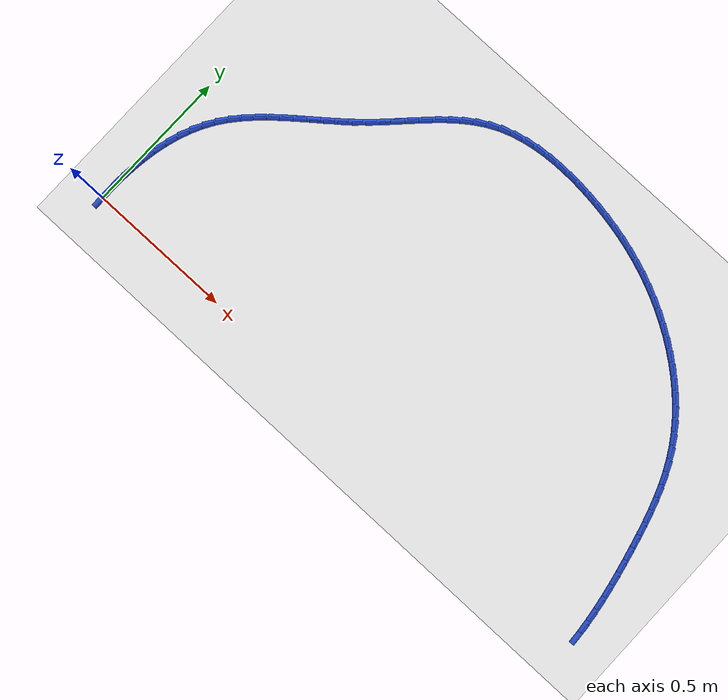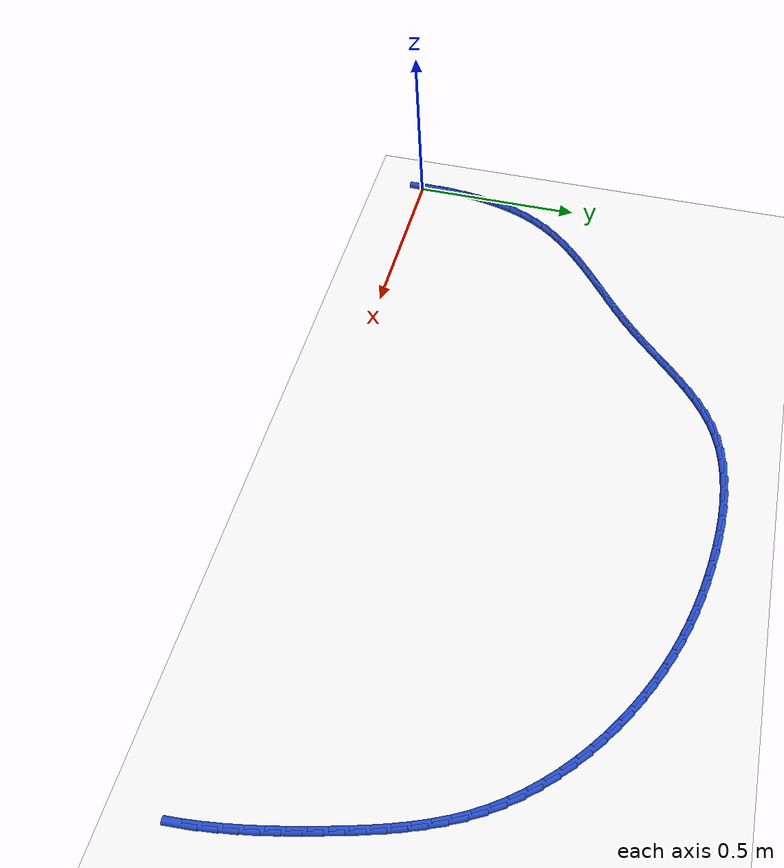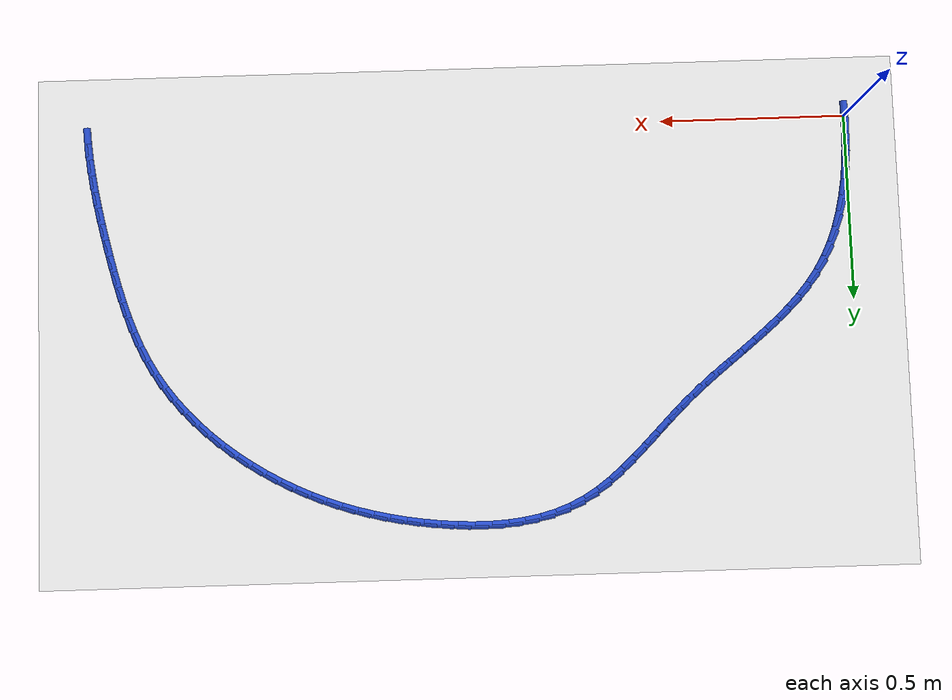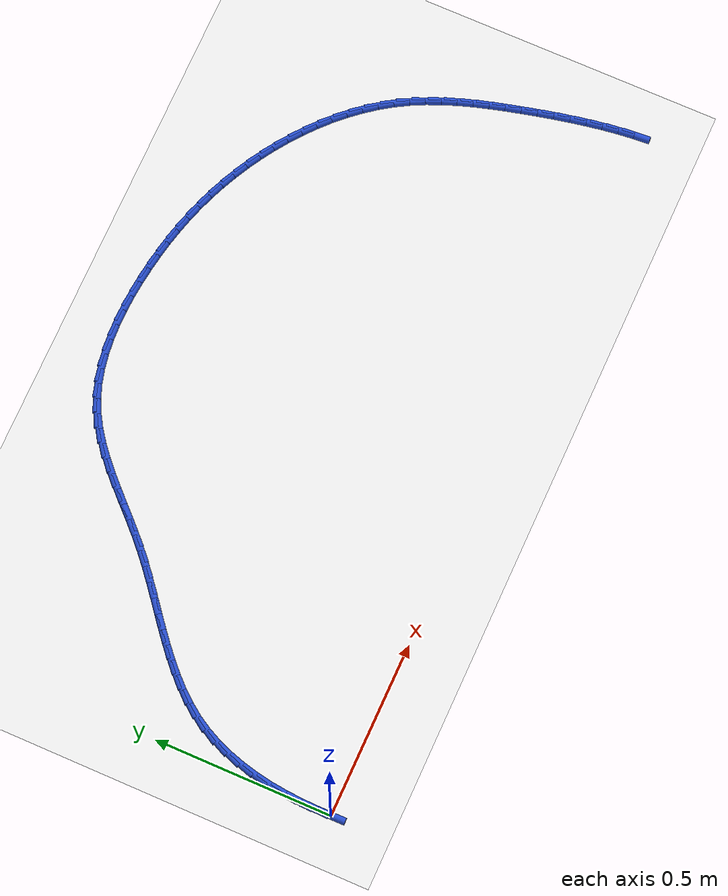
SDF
<sdf version="1.6">
 <world name="default">
  <model name="ground_plane">
   <static>1</static>
   <link name="link">
    <collision name="collision">
     <geometry><plane><normal>0 0 1</normal><size>100 100</size></plane></geometry>
     <surface><friction><ode><mu>100</mu><mu2>50</mu2></ode></friction></surface>
    </collision>
    <visual name="visual">
     <cast_shadows>0</cast_shadows>
     <geometry><plane><normal>0 0 1</normal><size>100 100</size></plane></geometry>
     <material>
      <script><uri>file://media/materials/scripts/gazebo.material</uri><name>Gazebo/WhiteGlow</name></script>
     </material>
    </visual>
   </link>
  </model>
  <model name="line">
   <link name="link_0">
    <pose>3.469446951953614e-18 -2.7755575615628914e-17 0.01 0 1.57 -1.5662328181608505</pose>
    <collision name="collision">
     <geometry><cylinder><radius>0.01</radius><length>0.08</length></cylinder></geometry>
    </collision>
    <visual name="visual">
     <material>
      <script><name>Gazebo/Blue</name><uri>file://media/materials/scripts/gazebo.material</uri></script>
     </material>
     <geometry><cylinder><radius>0.01</radius><length>0.08</length></cylinder></geometry>
    </visual>
   </link>
   <link name="link_1">
    <pose>-0.00020602253707400727 0.04514533079947657 0.01 0 1.57 1.5365275692211684</pose>
    <collision name="collision">
     <geometry><cylinder><radius>0.01</radius><length>0.08</length></cylinder></geometry>
    </collision>
    <visual name="visual">
     <material>
      <script><name>Gazebo/Blue</name><uri>file://media/materials/scripts/gazebo.material</uri></script>
     </material>
     <geometry><cylinder><radius>0.01</radius><length>0.08</length></cylinder></geometry>
    </visual>
   </link>
   <link name="link_2">
    <pose>0.0013460004159330614 0.09041733588694323 0.01 0 1.57 1.4938808284677962</pose>
    <collision name="collision">
     <geometry><cylinder><radius>0.01</radius><length>0.08</length></cylinder></geometry>
    </collision>
    <visual name="visual">
     <material>
      <script><name>Gazebo/Blue</name><uri>file://media/materials/scripts/gazebo.material</uri></script>
     </material>
     <geometry><cylinder><radius>0.01</radius><length>0.08</length></cylinder></geometry>
    </visual>
   </link>
   <link name="link_3">
    <pose>0.00482324214725611 0.13553674598285181 0.01 0 1.57 1.446800699411635</pose>
    <collision name="collision">
     <geometry><cylinder><radius>0.01</radius><length>0.08</length></cylinder></geometry>
    </collision>
    <visual name="visual">
     <material>
      <script><name>Gazebo/Blue</name><uri>file://media/materials/scripts/gazebo.material</uri></script>
     </material>
     <geometry><cylinder><radius>0.01</radius><length>0.08</length></cylinder></geometry>
    </visual>
   </link>
   <link name="link_4">
    <pose>0.010392875945130043 0.18022429180765426 0.01 0 1.57 1.3946104873315452</pose>
    <collision name="collision">
     <geometry><cylinder><radius>0.01</radius><length>0.08</length></cylinder></geometry>
    </collision>
    <visual name="visual">
     <material>
      <script><name>Gazebo/Blue</name><uri>file://media/materials/scripts/gazebo.material</uri></script>
     </material>
     <geometry><cylinder><radius>0.01</radius><length>0.08</length></cylinder></geometry>
    </visual>
   </link>
   <link name="link_5">
    <pose>0.01822207509778976 0.22420070408180257 0.01 0 1.57 1.3365870525976995</pose>
    <collision name="collision">
     <geometry><cylinder><radius>0.01</radius><length>0.08</length></cylinder></geometry>
    </collision>
    <visual name="visual">
     <material>
      <script><name>Gazebo/Blue</name><uri>file://media/materials/scripts/gazebo.material</uri></script>
     </material>
     <geometry><cylinder><radius>0.01</radius><length>0.08</length></cylinder></geometry>
    </visual>
   </link>
   <link name="link_6">
    <pose>0.02847801289347018 0.2671867135257487 0.01 0 1.57 1.2719896750110322</pose>
    <collision name="collision">
     <geometry><cylinder><radius>0.01</radius><length>0.08</length></cylinder></geometry>
    </collision>
    <visual name="visual">
     <material>
      <script><name>Gazebo/Blue</name><uri>file://media/materials/scripts/gazebo.material</uri></script>
     </material>
     <geometry><cylinder><radius>0.01</radius><length>0.08</length></cylinder></geometry>
    </visual>
   </link>
   <link name="link_7">
    <pose>0.041327862620406206 0.3089030508599446 0.01 0 1.57 1.200115232319605</pose>
    <collision name="collision">
     <geometry><cylinder><radius>0.01</radius><length>0.08</length></cylinder></geometry>
    </collision>
    <visual name="visual">
     <material>
      <script><name>Gazebo/Blue</name><uri>file://media/materials/scripts/gazebo.material</uri></script>
     </material>
     <geometry><cylinder><radius>0.01</radius><length>0.08</length></cylinder></geometry>
    </visual>
   </link>
   <link name="link_8">
    <pose>0.056938797566832726 0.34907044680484217 0.01 0 1.57 1.120389181391767</pose>
    <collision name="collision">
     <geometry><cylinder><radius>0.01</radius><length>0.08</length></cylinder></geometry>
    </collision>
    <visual name="visual">
     <material>
      <script><name>Gazebo/Blue</name><uri>file://media/materials/scripts/gazebo.material</uri></script>
     </material>
     <geometry><cylinder><radius>0.01</radius><length>0.08</length></cylinder></geometry>
    </visual>
   </link>
   <link name="link_9">
    <pose>0.07547799102098467 0.38740963208089335 0.01 0 1.57 1.0328212205551348</pose>
    <collision name="collision">
     <geometry><cylinder><radius>0.01</radius><length>0.08</length></cylinder></geometry>
    </collision>
    <visual name="visual">
     <material>
      <script><name>Gazebo/Blue</name><uri>file://media/materials/scripts/gazebo.material</uri></script>
     </material>
     <geometry><cylinder><radius>0.01</radius><length>0.08</length></cylinder></geometry>
    </visual>
   </link>
   <link name="link_10">
    <pose>0.09710295406298641 0.42365174749847884 0.01 0 1.57 0.9461803319421407</pose>
    <collision name="collision">
     <geometry><cylinder><radius>0.01</radius><length>0.08</length></cylinder></geometry>
    </collision>
    <visual name="visual">
     <material>
      <script><name>Gazebo/Blue</name><uri>file://media/materials/scripts/gazebo.material</uri></script>
     </material>
     <geometry><cylinder><radius>0.01</radius><length>0.08</length></cylinder></geometry>
    </visual>
   </link>
   <link name="link_11">
    <pose>0.1217196770446741 0.45779892300115727 0.01 0 1.57 0.8707524983348643</pose>
    <collision name="collision">
     <geometry><cylinder><radius>0.01</radius><length>0.08</length></cylinder></geometry>
    </collision>
    <visual name="visual">
     <material>
      <script><name>Gazebo/Blue</name><uri>file://media/materials/scripts/gazebo.material</uri></script>
     </material>
     <geometry><cylinder><radius>0.01</radius><length>0.08</length></cylinder></geometry>
    </visual>
   </link>
   <link name="link_12">
    <pose>0.14896519378176706 0.49014306305357924 0.01 0 1.57 0.8077489555728229</pose>
    <collision name="collision">
     <geometry><cylinder><radius>0.01</radius><length>0.08</length></cylinder></geometry>
    </collision>
    <visual name="visual">
     <material>
      <script><name>Gazebo/Blue</name><uri>file://media/materials/scripts/gazebo.material</uri></script>
     </material>
     <geometry><cylinder><radius>0.01</radius><length>0.08</length></cylinder></geometry>
    </visual>
   </link>
   <link name="link_13">
    <pose>0.1784633838088167 0.520990244579563 0.01 0 1.57 0.7572487342943846</pose>
    <collision name="collision">
     <geometry><cylinder><radius>0.01</radius><length>0.08</length></cylinder></geometry>
    </collision>
    <visual name="visual">
     <material>
      <script><name>Gazebo/Blue</name><uri>file://media/materials/scripts/gazebo.material</uri></script>
     </material>
     <geometry><cylinder><radius>0.01</radius><length>0.08</length></cylinder></geometry>
    </visual>
   </link>
   <link name="link_14">
    <pose>0.20983812666037432 0.5506465445029266 0.01 0 1.57 0.7189284821755045</pose>
    <collision name="collision">
     <geometry><cylinder><radius>0.01</radius><length>0.08</length></cylinder></geometry>
    </collision>
    <visual name="visual">
     <material>
      <script><name>Gazebo/Blue</name><uri>file://media/materials/scripts/gazebo.material</uri></script>
     </material>
     <geometry><cylinder><radius>0.01</radius><length>0.08</length></cylinder></geometry>
    </visual>
   </link>
   <link name="link_15">
    <pose>0.24271330187099135 0.5794180397474883 0.01 0 1.57 0.6923008136913837</pose>
    <collision name="collision">
     <geometry><cylinder><radius>0.01</radius><length>0.08</length></cylinder></geometry>
    </collision>
    <visual name="visual">
     <material>
      <script><name>Gazebo/Blue</name><uri>file://media/materials/scripts/gazebo.material</uri></script>
     </material>
     <geometry><cylinder><radius>0.01</radius><length>0.08</length></cylinder></geometry>
    </visual>
   </link>
   <link name="link_16">
    <pose>0.2767127889752188 0.6076108072370656 0.01 0 1.57 0.6768776904252869</pose>
    <collision name="collision">
     <geometry><cylinder><radius>0.01</radius><length>0.08</length></cylinder></geometry>
    </collision>
    <visual name="visual">
     <material>
      <script><name>Gazebo/Blue</name><uri>file://media/materials/scripts/gazebo.material</uri></script>
     </material>
     <geometry><cylinder><radius>0.01</radius><length>0.08</length></cylinder></geometry>
    </visual>
   </link>
   <link name="link_17">
    <pose>0.3114604675076083 0.6355309238954772 0.01 0 1.57 0.6722661655963784</pose>
    <collision name="collision">
     <geometry><cylinder><radius>0.01</radius><length>0.08</length></cylinder></geometry>
    </collision>
    <visual name="visual">
     <material>
      <script><name>Gazebo/Blue</name><uri>file://media/materials/scripts/gazebo.material</uri></script>
     </material>
     <geometry><cylinder><radius>0.01</radius><length>0.08</length></cylinder></geometry>
    </visual>
   </link>
   <link name="link_18">
    <pose>0.34658021700271086 0.6634844666465405 0.01 0 1.57 0.6782125351929353</pose>
    <collision name="collision">
     <geometry><cylinder><radius>0.01</radius><length>0.08</length></cylinder></geometry>
    </collision>
    <visual name="visual">
     <material>
      <script><name>Gazebo/Blue</name><uri>file://media/materials/scripts/gazebo.material</uri></script>
     </material>
     <geometry><cylinder><radius>0.01</radius><length>0.08</length></cylinder></geometry>
    </visual>
   </link>
   <link name="link_19">
    <pose>0.3816959169950781 0.6917775124140739 0.01 0 1.57 0.6946082987009818</pose>
    <collision name="collision">
     <geometry><cylinder><radius>0.01</radius><length>0.08</length></cylinder></geometry>
    </collision>
    <visual name="visual">
     <material>
      <script><name>Gazebo/Blue</name><uri>file://media/materials/scripts/gazebo.material</uri></script>
     </material>
     <geometry><cylinder><radius>0.01</radius><length>0.08</length></cylinder></geometry>
    </visual>
   </link>
   <link name="link_20">
    <pose>0.41643144701926105 0.7207161381218956 0.01 0 1.57 0.7214649411585046</pose>
    <collision name="collision">
     <geometry><cylinder><radius>0.01</radius><length>0.08</length></cylinder></geometry>
    </collision>
    <visual name="visual">
     <material>
      <script><name>Gazebo/Blue</name><uri>file://media/materials/scripts/gazebo.material</uri></script>
     </material>
     <geometry><cylinder><radius>0.01</radius><length>0.08</length></cylinder></geometry>
    </visual>
   </link>
   <link name="link_21">
    <pose>0.45041068660981143 0.7506064206938237 0.01 0 1.57 0.7559417604104025</pose>
    <collision name="collision">
     <geometry><cylinder><radius>0.01</radius><length>0.08</length></cylinder></geometry>
    </collision>
    <visual name="visual">
     <material>
      <script><name>Gazebo/Blue</name><uri>file://media/materials/scripts/gazebo.material</uri></script>
     </material>
     <geometry><cylinder><radius>0.01</radius><length>0.08</length></cylinder></geometry>
    </visual>
   </link>
   <link name="link_22">
    <pose>0.483343160799513 0.7816537351755948 0.01 0 1.57 0.7818930835358702</pose>
    <collision name="collision">
     <geometry><cylinder><radius>0.01</radius><length>0.08</length></cylinder></geometry>
    </collision>
    <visual name="visual">
     <material>
      <script><name>Gazebo/Blue</name><uri>file://media/materials/scripts/gazebo.material</uri></script>
     </material>
     <geometry><cylinder><radius>0.01</radius><length>0.08</length></cylinder></geometry>
    </visual>
   </link>
   <link name="link_23">
    <pose>0.5154157075397474 0.8135022326335528 0.01 0 1.57 0.7937970196566747</pose>
    <collision name="collision">
     <geometry><cylinder><radius>0.01</radius><length>0.08</length></cylinder></geometry>
    </collision>
    <visual name="visual">
     <material>
      <script><name>Gazebo/Blue</name><uri>file://media/materials/scripts/gazebo.material</uri></script>
     </material>
     <geometry><cylinder><radius>0.01</radius><length>0.08</length></cylinder></geometry>
    </visual>
   </link>
   <link name="link_24">
    <pose>0.5469804626781769 0.8456017070581688 0.01 0 1.57 0.791580660811204</pose>
    <collision name="collision">
     <geometry><cylinder><radius>0.01</radius><length>0.08</length></cylinder></geometry>
    </collision>
    <visual name="visual">
     <material>
      <script><name>Gazebo/Blue</name><uri>file://media/materials/scripts/gazebo.material</uri></script>
     </material>
     <geometry><cylinder><radius>0.01</radius><length>0.08</length></cylinder></geometry>
    </visual>
   </link>
   <link name="link_25">
    <pose>0.5783897227309726 0.8774017635260645 0.01 0 1.57 0.7749149056330398</pose>
    <collision name="collision">
     <geometry><cylinder><radius>0.01</radius><length>0.08</length></cylinder></geometry>
    </collision>
    <visual name="visual">
     <material>
      <script><name>Gazebo/Blue</name><uri>file://media/materials/scripts/gazebo.material</uri></script>
     </material>
     <geometry><cylinder><radius>0.01</radius><length>0.08</length></cylinder></geometry>
    </visual>
   </link>
   <link name="link_26">
    <pose>0.6099957842143057 0.908352007113862 0.01 0 1.57 0.7432043502115773</pose>
    <collision name="collision">
     <geometry><cylinder><radius>0.01</radius><length>0.08</length></cylinder></geometry>
    </collision>
    <visual name="visual">
     <material>
      <script><name>Gazebo/Blue</name><uri>file://media/materials/scripts/gazebo.material</uri></script>
     </material>
     <geometry><cylinder><radius>0.01</radius><length>0.08</length></cylinder></geometry>
    </visual>
   </link>
   <link name="link_27">
    <pose>0.6421509436443478 0.9379020428981834 0.01 0 1.57 0.6956713560132353</pose>
    <collision name="collision">
     <geometry><cylinder><radius>0.01</radius><length>0.08</length></cylinder></geometry>
    </collision>
    <visual name="visual">
     <material>
      <script><name>Gazebo/Blue</name><uri>file://media/materials/scripts/gazebo.material</uri></script>
     </material>
     <geometry><cylinder><radius>0.01</radius><length>0.08</length></cylinder></geometry>
    </visual>
   </link>
   <link name="link_28">
    <pose>0.6752074975372702 0.9655014759556512 0.01 0 1.57 0.6315649234335238</pose>
    <collision name="collision">
     <geometry><cylinder><radius>0.01</radius><length>0.08</length></cylinder></geometry>
    </collision>
    <visual name="visual">
     <material>
      <script><name>Gazebo/Blue</name><uri>file://media/materials/scripts/gazebo.material</uri></script>
     </material>
     <geometry><cylinder><radius>0.01</radius><length>0.08</length></cylinder></geometry>
    </visual>
   </link>
   <link name="link_29">
    <pose>0.709517742409244 0.990599911362887 0.01 0 1.57 0.5505383714419325</pose>
    <collision name="collision">
     <geometry><cylinder><radius>0.01</radius><length>0.08</length></cylinder></geometry>
    </collision>
    <visual name="visual">
     <material>
      <script><name>Gazebo/Blue</name><uri>file://media/materials/scripts/gazebo.material</uri></script>
     </material>
     <geometry><cylinder><radius>0.01</radius><length>0.08</length></cylinder></geometry>
    </visual>
   </link>
   <link name="link_30">
    <pose>0.7454339747764408 1.0126469541965135 0.01 0 1.57 0.45357030850402397</pose>
    <collision name="collision">
     <geometry><cylinder><radius>0.01</radius><length>0.08</length></cylinder></geometry>
    </collision>
    <visual name="visual">
     <material>
      <script><name>Gazebo/Blue</name><uri>file://media/materials/scripts/gazebo.material</uri></script>
     </material>
     <geometry><cylinder><radius>0.01</radius><length>0.08</length></cylinder></geometry>
    </visual>
   </link>
   <link name="link_31">
    <pose>0.7832985049923746 1.03110462922118 0.01 0 1.57 0.35332833808266917</pose>
    <collision name="collision">
     <geometry><cylinder><radius>0.01</radius><length>0.08</length></cylinder></geometry>
    </collision>
    <visual name="visual">
     <material>
      <script><name>Gazebo/Blue</name><uri>file://media/materials/scripts/gazebo.material</uri></script>
     </material>
     <geometry><cylinder><radius>0.01</radius><length>0.08</length></cylinder></geometry>
    </visual>
   </link>
   <link name="link_32">
    <pose>0.8231565381078694 1.0458044680178495 0.01 0 1.57 0.26318274665005087</pose>
    <collision name="collision">
     <geometry><cylinder><radius>0.01</radius><length>0.08</length></cylinder></geometry>
    </collision>
    <visual name="visual">
     <material>
      <script><name>Gazebo/Blue</name><uri>file://media/materials/scripts/gazebo.material</uri></script>
     </material>
     <geometry><cylinder><radius>0.01</radius><length>0.08</length></cylinder></geometry>
    </visual>
   </link>
   <link name="link_33">
    <pose>0.8647130513239211 1.0570011400531898 0.01 0 1.57 0.18354505986909575</pose>
    <collision name="collision">
     <geometry><cylinder><radius>0.01</radius><length>0.08</length></cylinder></geometry>
    </collision>
    <visual name="visual">
     <material>
      <script><name>Gazebo/Blue</name><uri>file://media/materials/scripts/gazebo.material</uri></script>
     </material>
     <geometry><cylinder><radius>0.01</radius><length>0.08</length></cylinder></geometry>
    </visual>
   </link>
   <link name="link_34">
    <pose>0.907654361479108 1.0649725224951287 0.01 0 1.57 0.11365696003977273</pose>
    <collision name="collision">
     <geometry><cylinder><radius>0.01</radius><length>0.08</length></cylinder></geometry>
    </collision>
    <visual name="visual">
     <material>
      <script><name>Gazebo/Blue</name><uri>file://media/materials/scripts/gazebo.material</uri></script>
     </material>
     <geometry><cylinder><radius>0.01</radius><length>0.08</length></cylinder></geometry>
    </visual>
   </link>
   <link name="link_35">
    <pose>0.9516667854120098 1.0699964925115943 0.01 0 1.57 0.05254133254348595</pose>
    <collision name="collision">
     <geometry><cylinder><radius>0.01</radius><length>0.08</length></cylinder></geometry>
    </collision>
    <visual name="visual">
     <material>
      <script><name>Gazebo/Blue</name><uri>file://media/materials/scripts/gazebo.material</uri></script>
     </material>
     <geometry><cylinder><radius>0.01</radius><length>0.08</length></cylinder></geometry>
    </visual>
   </link>
   <link name="link_36">
    <pose>0.9964366399612051 1.0723509272705143 0.01 0 1.57 -0.0008232770811992697</pose>
    <collision name="collision">
     <geometry><cylinder><radius>0.01</radius><length>0.08</length></cylinder></geometry>
    </collision>
    <visual name="visual">
     <material>
      <script><name>Gazebo/Blue</name><uri>file://media/materials/scripts/gazebo.material</uri></script>
     </material>
     <geometry><cylinder><radius>0.01</radius><length>0.08</length></cylinder></geometry>
    </visual>
   </link>
   <link name="link_37">
    <pose>1.041650241965273 1.072313703939816 0.01 0 1.57 -0.04740227471176772</pose>
    <collision name="collision">
     <geometry><cylinder><radius>0.01</radius><length>0.08</length></cylinder></geometry>
    </collision>
    <visual name="visual">
     <material>
      <script><name>Gazebo/Blue</name><uri>file://media/materials/scripts/gazebo.material</uri></script>
     </material>
     <geometry><cylinder><radius>0.01</radius><length>0.08</length></cylinder></geometry>
    </visual>
   </link>
   <link name="link_38">
    <pose>1.0869939082627924 1.0701626996874283 0.01 0 1.57 -0.0880556673157361</pose>
    <collision name="collision">
     <geometry><cylinder><radius>0.01</radius><length>0.08</length></cylinder></geometry>
    </collision>
    <visual name="visual">
     <material>
      <script><name>Gazebo/Blue</name><uri>file://media/materials/scripts/gazebo.material</uri></script>
     </material>
     <geometry><cylinder><radius>0.01</radius><length>0.08</length></cylinder></geometry>
    </visual>
   </link>
   <link name="link_39">
    <pose>1.1321539556923421 1.0661757916812784 0.01 0 1.57 -0.12354309175123841</pose>
    <collision name="collision">
     <geometry><cylinder><radius>0.01</radius><length>0.08</length></cylinder></geometry>
    </collision>
    <visual name="visual">
     <material>
      <script><name>Gazebo/Blue</name><uri>file://media/materials/scripts/gazebo.material</uri></script>
     </material>
     <geometry><cylinder><radius>0.01</radius><length>0.08</length></cylinder></geometry>
    </visual>
   </link>
   <link name="link_40">
    <pose>1.1768179660798448 1.060629616095258 0.01 0 1.57 -0.15659754596443135</pose>
    <collision name="collision">
     <geometry><cylinder><radius>0.01</radius><length>0.08</length></cylinder></geometry>
    </collision>
    <visual name="visual">
     <material>
      <script><name>Gazebo/Blue</name><uri>file://media/materials/scripts/gazebo.material</uri></script>
     </material>
     <geometry><cylinder><radius>0.01</radius><length>0.08</length></cylinder></geometry>
    </visual>
   </link>
   <link name="link_41">
    <pose>1.2207896125474373 1.0536869197374448 0.01 0 1.57 -0.19121898460909753</pose>
    <collision name="collision">
     <geometry><cylinder><radius>0.01</radius><length>0.08</length></cylinder></geometry>
    </collision>
    <visual name="visual">
     <material>
      <script><name>Gazebo/Blue</name><uri>file://media/materials/scripts/gazebo.material</uri></script>
     </material>
     <geometry><cylinder><radius>0.01</radius><length>0.08</length></cylinder></geometry>
    </visual>
   </link>
   <link name="link_42">
    <pose>1.264080466787545 1.0453064941057777 0.01 0 1.57 -0.22768503858807543</pose>
    <collision name="collision">
     <geometry><cylinder><radius>0.01</radius><length>0.08</length></cylinder></geometry>
    </collision>
    <visual name="visual">
     <material>
      <script><name>Gazebo/Blue</name><uri>file://media/materials/scripts/gazebo.material</uri></script>
     </material>
     <geometry><cylinder><radius>0.01</radius><length>0.08</length></cylinder></geometry>
    </visual>
   </link>
   <link name="link_43">
    <pose>1.3067237047537577 1.0354259362100404 0.01 0 1.57 -0.2658244442742351</pose>
    <collision name="collision">
     <geometry><cylinder><radius>0.01</radius><length>0.08</length></cylinder></geometry>
    </collision>
    <visual name="visual">
     <material>
      <script><name>Gazebo/Blue</name><uri>file://media/materials/scripts/gazebo.material</uri></script>
     </material>
     <geometry><cylinder><radius>0.01</radius><length>0.08</length></cylinder></geometry>
    </visual>
   </link>
   <link name="link_44">
    <pose>1.3487525023996623 1.0239828430600149 0.01 0 1.57 -0.30542547260663827</pose>
    <collision name="collision">
     <geometry><cylinder><radius>0.01</radius><length>0.08</length></cylinder></geometry>
    </collision>
    <visual name="visual">
     <material>
      <script><name>Gazebo/Blue</name><uri>file://media/materials/scripts/gazebo.material</uri></script>
     </material>
     <geometry><cylinder><radius>0.01</radius><length>0.08</length></cylinder></geometry>
    </visual>
   </link>
   <link name="link_45">
    <pose>1.3902000356788489 1.0109148116654851 0.01 0 1.57 -0.3462387991575919</pose>
    <collision name="collision">
     <geometry><cylinder><radius>0.01</radius><length>0.08</length></cylinder></geometry>
    </collision>
    <visual name="visual">
     <material>
      <script><name>Gazebo/Blue</name><uri>file://media/materials/scripts/gazebo.material</uri></script>
     </material>
     <geometry><cylinder><radius>0.01</radius><length>0.08</length></cylinder></geometry>
    </visual>
   </link>
   <link name="link_46">
    <pose>1.4310994805449044 0.9961594390362342 0.01 0 1.57 -0.38798292365209136</pose>
    <collision name="collision">
     <geometry><cylinder><radius>0.01</radius><length>0.08</length></cylinder></geometry>
    </collision>
    <visual name="visual">
     <material>
      <script><name>Gazebo/Blue</name><uri>file://media/materials/scripts/gazebo.material</uri></script>
     </material>
     <geometry><cylinder><radius>0.01</radius><length>0.08</length></cylinder></geometry>
    </visual>
   </link>
   <link name="link_47">
    <pose>1.4714840129514173 0.9796543221820447 0.01 0 1.57 -0.4303517544796513</pose>
    <collision name="collision">
     <geometry><cylinder><radius>0.01</radius><length>0.08</length></cylinder></geometry>
    </collision>
    <visual name="visual">
     <material>
      <script><name>Gazebo/Blue</name><uri>file://media/materials/scripts/gazebo.material</uri></script>
     </material>
     <geometry><cylinder><radius>0.01</radius><length>0.08</length></cylinder></geometry>
    </visual>
   </link>
   <link name="link_48">
    <pose>1.5113864995676047 0.9613372120985697 0.01 0 1.57 -0.4730434057449655</pose>
    <collision name="collision">
     <geometry><cylinder><radius>0.01</radius><length>0.08</length></cylinder></geometry>
    </collision>
    <visual name="visual">
     <material>
      <script><name>Gazebo/Blue</name><uri>file://media/materials/scripts/gazebo.material</uri></script>
     </material>
     <geometry><cylinder><radius>0.01</radius><length>0.08</length></cylinder></geometry>
    </visual>
   </link>
   <link name="link_49">
    <pose>1.5507772178040684 0.9411770215933531 0.01 0 1.57 -0.5161218047111916</pose>
    <collision name="collision">
     <geometry><cylinder><radius>0.01</radius><length>0.08</length></cylinder></geometry>
    </collision>
    <visual name="visual">
     <material>
      <script><name>Gazebo/Blue</name><uri>file://media/materials/scripts/gazebo.material</uri></script>
     </material>
     <geometry><cylinder><radius>0.01</radius><length>0.08</length></cylinder></geometry>
    </visual>
   </link>
   <link name="link_50">
    <pose>1.5894882355418278 0.9192114749514636 0.01 0 1.57 -0.5599455992413617</pose>
    <collision name="collision">
     <geometry><cylinder><radius>0.01</radius><length>0.08</length></cylinder></geometry>
    </collision>
    <visual name="visual">
     <material>
      <script><name>Gazebo/Blue</name><uri>file://media/materials/scripts/gazebo.material</uri></script>
     </material>
     <geometry><cylinder><radius>0.01</radius><length>0.08</length></cylinder></geometry>
    </visual>
   </link>
   <link name="link_51">
    <pose>1.6273331404596965 0.8954874973431952 0.01 0 1.57 -0.6048799009087822</pose>
    <collision name="collision">
     <geometry><cylinder><radius>0.01</radius><length>0.08</length></cylinder></geometry>
    </collision>
    <visual name="visual">
     <material>
      <script><name>Gazebo/Blue</name><uri>file://media/materials/scripts/gazebo.material</uri></script>
     </material>
     <geometry><cylinder><radius>0.01</radius><length>0.08</length></cylinder></geometry>
    </visual>
   </link>
   <link name="link_52">
    <pose>1.6641255202364884 0.8700520139388414 0.01 0 1.57 -0.6512853833089659</pose>
    <collision name="collision">
     <geometry><cylinder><radius>0.01</radius><length>0.08</length></cylinder></geometry>
    </collision>
    <visual name="visual">
     <material>
      <script><name>Gazebo/Blue</name><uri>file://media/materials/scripts/gazebo.material</uri></script>
     </material>
     <geometry><cylinder><radius>0.01</radius><length>0.08</length></cylinder></geometry>
    </visual>
   </link>
   <link name="link_53">
    <pose>1.6996789625510178 0.8429519499086955 0.01 0 1.57 -0.6995202694699366</pose>
    <collision name="collision">
     <geometry><cylinder><radius>0.01</radius><length>0.08</length></cylinder></geometry>
    </collision>
    <visual name="visual">
     <material>
      <script><name>Gazebo/Blue</name><uri>file://media/materials/scripts/gazebo.material</uri></script>
     </material>
     <geometry><cylinder><radius>0.01</radius><length>0.08</length></cylinder></geometry>
    </visual>
   </link>
   <link name="link_54">
    <pose>1.7338070550820992 0.8142342304230514 0.01 0 1.57 -0.7499399247818923</pose>
    <collision name="collision">
     <geometry><cylinder><radius>0.01</radius><length>0.08</length></cylinder></geometry>
    </collision>
    <visual name="visual">
     <material>
      <script><name>Gazebo/Blue</name><uri>file://media/materials/scripts/gazebo.material</uri></script>
     </material>
     <geometry><cylinder><radius>0.01</radius><length>0.08</length></cylinder></geometry>
    </visual>
   </link>
   <link name="link_55">
    <pose>1.7663233855085465 0.7839457806522034 0.01 0 1.57 -0.802893446704945</pose>
    <collision name="collision">
     <geometry><cylinder><radius>0.01</radius><length>0.08</length></cylinder></geometry>
    </collision>
    <visual name="visual">
     <material>
      <script><name>Gazebo/Blue</name><uri>file://media/materials/scripts/gazebo.material</uri></script>
     </material>
     <geometry><cylinder><radius>0.01</radius><length>0.08</length></cylinder></geometry>
    </visual>
   </link>
   <link name="link_56">
    <pose>1.797041541509173 0.7521335257664444 0.01 0 1.57 -0.8587164714265515</pose>
    <collision name="collision">
     <geometry><cylinder><radius>0.01</radius><length>0.08</length></cylinder></geometry>
    </collision>
    <visual name="visual">
     <material>
      <script><name>Gazebo/Blue</name><uri>file://media/materials/scripts/gazebo.material</uri></script>
     </material>
     <geometry><cylinder><radius>0.01</radius><length>0.08</length></cylinder></geometry>
    </visual>
   </link>
   <link name="link_57">
    <pose>1.8257751107627938 0.7188443909360683 0.01 0 1.57 -0.9177193167012746</pose>
    <collision name="collision">
     <geometry><cylinder><radius>0.01</radius><length>0.08</length></cylinder></geometry>
    </collision>
    <visual name="visual">
     <material>
      <script><name>Gazebo/Blue</name><uri>file://media/materials/scripts/gazebo.material</uri></script>
     </material>
     <geometry><cylinder><radius>0.01</radius><length>0.08</length></cylinder></geometry>
    </visual>
   </link>
   <link name="link_58">
    <pose>1.8523376809482233 0.6841253013313688 0.01 0 1.57 -0.9801696436704599</pose>
    <collision name="collision">
     <geometry><cylinder><radius>0.01</radius><length>0.08</length></cylinder></geometry>
    </collision>
    <visual name="visual">
     <material>
      <script><name>Gazebo/Blue</name><uri>file://media/materials/scripts/gazebo.material</uri></script>
     </material>
     <geometry><cylinder><radius>0.01</radius><length>0.08</length></cylinder></geometry>
    </visual>
   </link>
   <link name="link_59">
    <pose>1.8765428397442745 0.6480231821226398 0.01 0 1.57 -1.0456846434320672</pose>
    <collision name="collision">
     <geometry><cylinder><radius>0.01</radius><length>0.08</length></cylinder></geometry>
    </collision>
    <visual name="visual">
     <material>
      <script><name>Gazebo/Blue</name><uri>file://media/materials/scripts/gazebo.material</uri></script>
     </material>
     <geometry><cylinder><radius>0.01</radius><length>0.08</length></cylinder></geometry>
    </visual>
   </link>
   <link name="link_60">
    <pose>1.898230741698793 0.6105895382829252 0.01 0 1.57 -1.1080162044766644</pose>
    <collision name="collision">
     <geometry><cylinder><radius>0.01</radius><length>0.08</length></cylinder></geometry>
    </collision>
    <visual name="visual">
     <material>
      <script><name>Gazebo/Blue</name><uri>file://media/materials/scripts/gazebo.material</uri></script>
     </material>
     <geometry><cylinder><radius>0.01</radius><length>0.08</length></cylinder></geometry>
    </visual>
   </link>
   <link name="link_61">
    <pose>1.9175215310709175 0.571924141581344 0.01 0 1.57 -1.1629761503358158</pose>
    <collision name="collision">
     <geometry><cylinder><radius>0.01</radius><length>0.08</length></cylinder></geometry>
    </collision>
    <visual name="visual">
     <material>
      <script><name>Gazebo/Blue</name><uri>file://media/materials/scripts/gazebo.material</uri></script>
     </material>
     <geometry><cylinder><radius>0.01</radius><length>0.08</length></cylinder></geometry>
    </visual>
   </link>
   <link name="link_62">
    <pose>1.9347031727631612 0.5321556940099638 0.01 0 1.57 -1.2102122241353317</pose>
    <collision name="collision">
     <geometry><cylinder><radius>0.01</radius><length>0.08</length></cylinder></geometry>
    </collision>
    <visual name="visual">
     <material>
      <script><name>Gazebo/Blue</name><uri>file://media/materials/scripts/gazebo.material</uri></script>
     </material>
     <geometry><cylinder><radius>0.01</radius><length>0.08</length></cylinder></geometry>
    </visual>
   </link>
   <link name="link_63">
    <pose>1.950065905365327 0.49141328951668645 0.01 0 1.57 -1.2496596518327214</pose>
    <collision name="collision">
     <geometry><cylinder><radius>0.01</radius><length>0.08</length></cylinder></geometry>
    </collision>
    <visual name="visual">
     <material>
      <script><name>Gazebo/Blue</name><uri>file://media/materials/scripts/gazebo.material</uri></script>
     </material>
     <geometry><cylinder><radius>0.01</radius><length>0.08</length></cylinder></geometry>
    </visual>
   </link>
   <link name="link_64">
    <pose>1.9638999674672155 0.44982602204941263 0.01 0 1.57 -1.281407176696185</pose>
    <collision name="collision">
     <geometry><cylinder><radius>0.01</radius><length>0.08</length></cylinder></geometry>
    </collision>
    <visual name="visual">
     <material>
      <script><name>Gazebo/Blue</name><uri>file://media/materials/scripts/gazebo.material</uri></script>
     </material>
     <geometry><cylinder><radius>0.01</radius><length>0.08</length></cylinder></geometry>
    </visual>
   </link>
   <link name="link_65">
    <pose>1.9764955976586294 0.40752298555604355 0.01 0 1.57 -1.3056243989213154</pose>
    <collision name="collision">
     <geometry><cylinder><radius>0.01</radius><length>0.08</length></cylinder></geometry>
    </collision>
    <visual name="visual">
     <material>
      <script><name>Gazebo/Blue</name><uri>file://media/materials/scripts/gazebo.material</uri></script>
     </material>
     <geometry><cylinder><radius>0.01</radius><length>0.08</length></cylinder></geometry>
    </visual>
   </link>
   <link name="link_66">
    <pose>1.9881430345293698 0.36463327398448037 0.01 0 1.57 -1.3225080956242803</pose>
    <collision name="collision">
     <geometry><cylinder><radius>0.01</radius><length>0.08</length></cylinder></geometry>
    </collision>
    <visual name="visual">
     <material>
      <script><name>Gazebo/Blue</name><uri>file://media/materials/scripts/gazebo.material</uri></script>
     </material>
     <geometry><cylinder><radius>0.01</radius><length>0.08</length></cylinder></geometry>
    </visual>
   </link>
   <link name="link_67">
    <pose>1.9991324148017733 0.3212859686506474 0.01 0 1.57 -1.3345374796264613</pose>
    <collision name="collision">
     <geometry><cylinder><radius>0.01</radius><length>0.08</length></cylinder></geometry>
    </collision>
    <visual name="visual">
     <material>
      <script><name>Gazebo/Blue</name><uri>file://media/materials/scripts/gazebo.material</uri></script>
     </material>
     <geometry><cylinder><radius>0.01</radius><length>0.08</length></cylinder></geometry>
    </visual>
   </link>
   <link name="link_68">
    <pose>2.009650672397951 0.2775973533070867 0.01 0 1.57 -1.3484483730831842</pose>
    <collision name="collision">
     <geometry><cylinder><radius>0.01</radius><length>0.08</length></cylinder></geometry>
    </collision>
    <visual name="visual">
     <material>
      <script><name>Gazebo/Blue</name><uri>file://media/materials/scripts/gazebo.material</uri></script>
     </material>
     <geometry><cylinder><radius>0.01</radius><length>0.08</length></cylinder></geometry>
    </visual>
   </link>
   <link name="link_69">
    <pose>2.0195872753716753 0.23364682473916312 0.01 0 1.57 -1.3655011961550674</pose>
    <collision name="collision">
     <geometry><cylinder><radius>0.01</radius><length>0.08</length></cylinder></geometry>
    </collision>
    <visual name="visual">
     <material>
      <script><name>Gazebo/Blue</name><uri>file://media/materials/scripts/gazebo.material</uri></script>
     </material>
     <geometry><cylinder><radius>0.01</radius><length>0.08</length></cylinder></geometry>
    </visual>
   </link>
   <link name="link_70">
    <pose>2.028778418660386 0.18950717365099767 0.01 0 1.57 -1.3858002358392294</pose>
    <collision name="collision">
     <geometry><cylinder><radius>0.01</radius><length>0.08</length></cylinder></geometry>
    </collision>
    <visual name="visual">
     <material>
      <script><name>Gazebo/Blue</name><uri>file://media/materials/scripts/gazebo.material</uri></script>
     </material>
     <geometry><cylinder><radius>0.01</radius><length>0.08</length></cylinder></geometry>
    </visual>
   </link>
   <link name="link_71">
    <pose>2.0370602972015206 0.1452511907467109 0.01 0 1.57 -1.4094815090133308</pose>
    <collision name="collision">
     <geometry><cylinder><radius>0.01</radius><length>0.08</length></cylinder></geometry>
    </collision>
    <visual name="visual">
     <material>
      <script><name>Gazebo/Blue</name><uri>file://media/materials/scripts/gazebo.material</uri></script>
     </material>
     <geometry><cylinder><radius>0.01</radius><length>0.08</length></cylinder></geometry>
    </visual>
   </link>
   <link name="link_72">
    <pose>2.044269105932518 0.10095166673042427 0.01 0 1.57 -1.4367086091341617</pose>
    <collision name="collision">
     <geometry><cylinder><radius>0.01</radius><length>0.08</length></cylinder></geometry>
    </collision>
    <visual name="visual">
     <material>
      <script><name>Gazebo/Blue</name><uri>file://media/materials/scripts/gazebo.material</uri></script>
     </material>
     <geometry><cylinder><radius>0.01</radius><length>0.08</length></cylinder></geometry>
    </visual>
   </link>
   <link name="link_73">
    <pose>2.050241039790817 0.05668139230625861 0.01 0 1.57 -1.467667088317726</pose>
    <collision name="collision">
     <geometry><cylinder><radius>0.01</radius><length>0.08</length></cylinder></geometry>
    </collision>
    <visual name="visual">
     <material>
      <script><name>Gazebo/Blue</name><uri>file://media/materials/scripts/gazebo.material</uri></script>
     </material>
     <geometry><cylinder><radius>0.01</radius><length>0.08</length></cylinder></geometry>
    </visual>
   </link>
   <link name="link_74">
    <pose>2.054812293713855 0.01251315817833469 0.01 0 1.57 -1.502556543388025</pose>
    <collision name="collision">
     <geometry><cylinder><radius>0.01</radius><length>0.08</length></cylinder></geometry>
    </collision>
    <visual name="visual">
     <material>
      <script><name>Gazebo/Blue</name><uri>file://media/materials/scripts/gazebo.material</uri></script>
     </material>
     <geometry><cylinder><radius>0.01</radius><length>0.08</length></cylinder></geometry>
    </visual>
   </link>
   <link name="link_151">
    <pose>-0.00023905939133945023 0.045187946469513324 0.01 0 1.57 -1.5655060407824206</pose>
    <collision name="collision">
     <geometry><cylinder><radius>0.01</radius><length>0.08</length></cylinder></geometry>
    </collision>
    <visual name="visual">
     <material>
      <script><name>Gazebo/Blue</name><uri>file://media/materials/scripts/gazebo.material</uri></script>
     </material>
     <geometry><cylinder><radius>0.01</radius><length>0.08</length></cylinder></geometry>
    </visual>
   </link>
  </model>
 </world>
</sdf>
